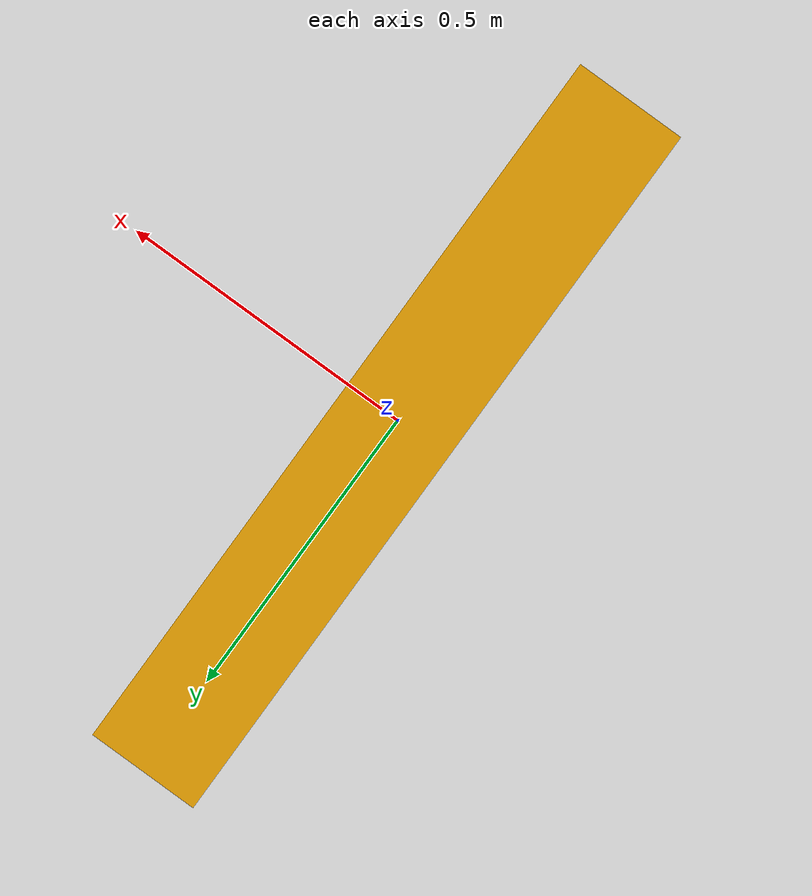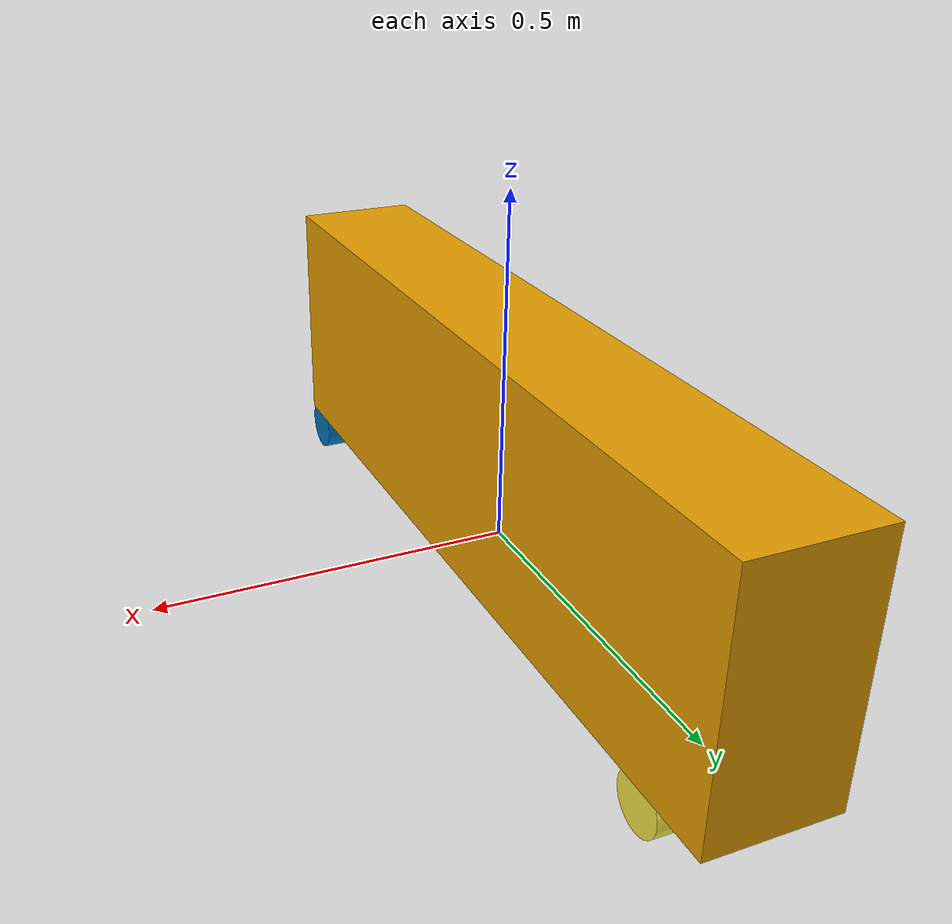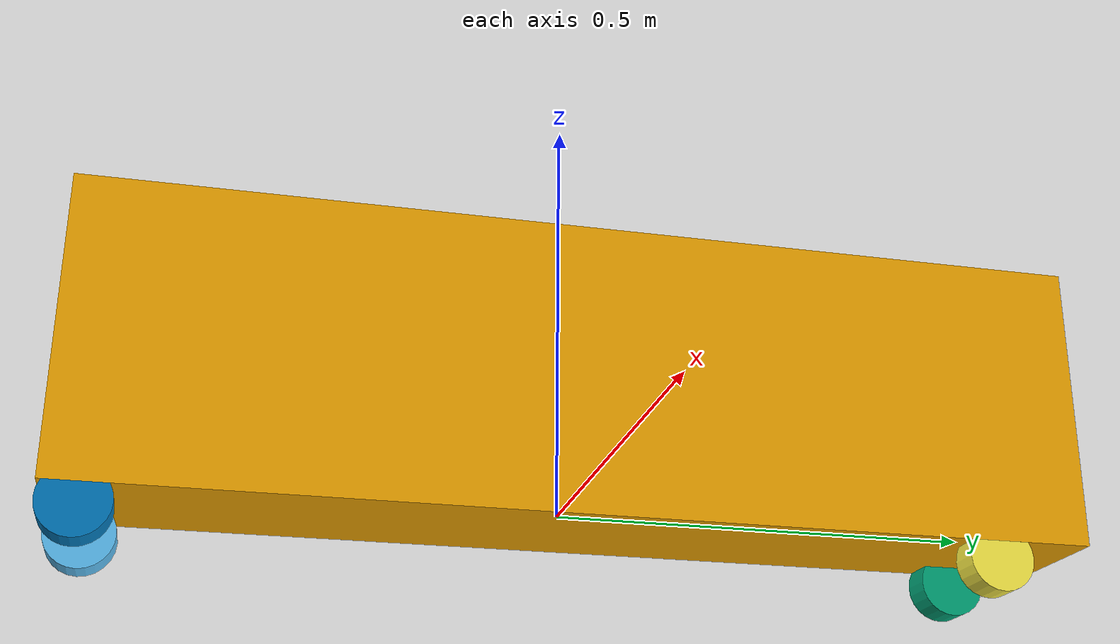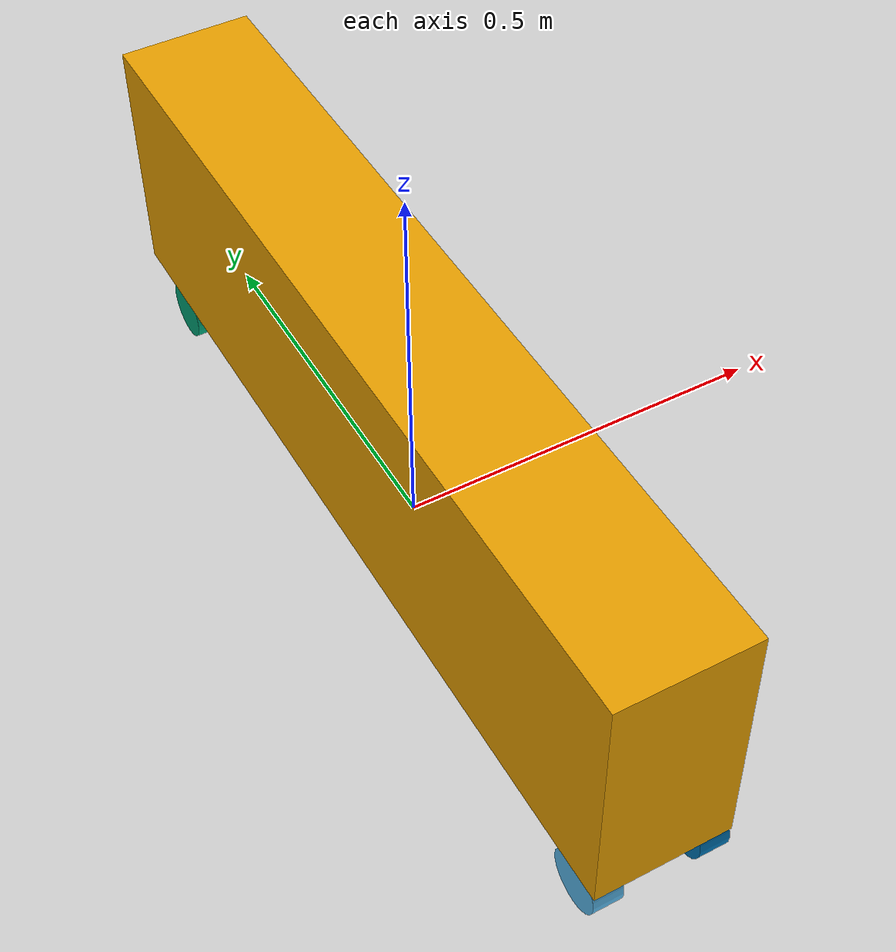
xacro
<?xml version="1.0" ?>
<robot name="LV" xmlns:xacro="http://www.ros.org/wiki/xacro">

  <xacro:include filename="$(find platooning_tracking_gazebo)/models/LV/model.gazebo" />

  <!-- front -->
  <joint name="front_left" type="continuous">
    <parent link="LV__link_0"/>
    <child link="LV__link_1_clone"/>
    <origin rpy="0      1.5707  0" xyz="-0.06999  0.51724 -0.039"/>
    <axis xyz="-1.00000000e+00   0.00000000e+00   9.00000000e-05"/>
    <dynamics damping="0.7"/>
    <limit effort="10" velocity="100"/>
  </joint>
  <joint name="front_right" type="continuous">
    <parent link="LV__link_0"/>
    <child link="LV__link_1_clone_0"/>
    <origin rpy="0      1.5707  0" xyz="0.06999  0.51441 -0.039"/>
    <axis xyz="-1.00000000e+00   0.00000000e+00   9.00000000e-05"/>
    <dynamics damping="0.7"/>
    <limit effort="10" velocity="100"/>
  </joint>

  <!-- rear -->
  <joint name="rear_left" type="continuous">
    <parent link="LV__link_0"/>
    <child link="LV__link_1"/>
    <origin rpy="0      1.5707  0" xyz="-0.06999 -0.53055 -0.039"/>
    <axis xyz="-1.00000000e+00   0.00000000e+00   9.00000000e-05"/>
    <dynamics damping="0.7"/>
    <limit effort="10" velocity="100"/>
  </joint>
  <joint name="rear_right" type="continuous">
    <parent link="LV__link_0"/>
    <child link="LV__link_1_clone_1"/>
    <origin rpy="0      1.5707  0" xyz="0.06999 -0.53055 -0.039"/>
    <axis xyz="-1.00000000e+00   0.00000000e+00   9.00000000e-05"/>
    <dynamics damping="0.7"/>
    <limit effort="10" velocity="100"/>
  </joint>

  <link name="LV__link_0">
    <inertial>
      <mass value="1"/>
      <origin rpy="0  0  0" xyz="0  0  0"/>
      <inertia ixx="0.166667" ixy="0" ixz="0" iyy="0.166667" iyz="0" izz="0.166667"/>
    </inertial>
    <collision name="LV__collision">
      <origin rpy="0  0  0" xyz="0       0.02944  0.156"/>
      <geometry>
        <box size="0.18 1.2 0.35"/>
      </geometry>
    </collision>
    <visual name="LV__visual">
      <origin rpy="0  0  0" xyz="0       0.02944  0.156"/>
      <geometry>
        <box size="0.18 1.2 0.35"/>
      </geometry>
    </visual>
  </link>
  <link name="LV__link_1">
    <inertial>
      <mass value="1"/>
      <origin rpy="0  0  0" xyz="0  0  0"/>
      <inertia ixx="0.145833" ixy="0" ixz="0" iyy="0.145833" iyz="0" izz="0.125"/>
    </inertial>
    <collision name="LV__collision">
      <origin rpy="0  0  0" xyz="0  0  0"/>
      <geometry>
        <cylinder length="0.04" radius="0.04"/>
      </geometry>
    </collision>
    <visual name="LV__visual">
      <origin rpy="0  0  0" xyz="0  0  0"/>
      <geometry>
        <cylinder length="0.04" radius="0.04"/>
      </geometry>
    </visual>
  </link>
  <link name="LV__link_1_clone">
    <inertial>
      <mass value="1"/>
      <origin rpy="0  0  0" xyz="0  0  0"/>
      <inertia ixx="0.145833" ixy="0" ixz="0" iyy="0.145833" iyz="0" izz="0.125"/>
    </inertial>
    <collision name="LV__collision">
      <origin rpy="0  0  0" xyz="0  0  0"/>
      <geometry>
        <cylinder length="0.04" radius="0.04"/>
      </geometry>
    </collision>
    <visual name="LV__visual">
      <origin rpy="0  0  0" xyz="0  0  0"/>
      <geometry>
        <cylinder length="0.04" radius="0.04"/>
      </geometry>
    </visual>
  </link>
  <link name="LV__link_1_clone_0">
    <inertial>
      <mass value="1"/>
      <origin rpy="0  0  0" xyz="0  0  0"/>
      <inertia ixx="0.145833" ixy="0" ixz="0" iyy="0.145833" iyz="0" izz="0.125"/>
    </inertial>
    <collision name="LV__collision">
      <origin rpy="0  0  0" xyz="0  0  0"/>
      <geometry>
        <cylinder length="0.04" radius="0.04"/>
      </geometry>
    </collision>
    <visual name="LV__visual">
      <origin rpy="0  0  0" xyz="0  0  0"/>
      <geometry>
        <cylinder length="0.04" radius="0.04"/>
      </geometry>
    </visual>
  </link>
  <link name="LV__link_1_clone_1">
    <inertial>
      <mass value="1"/>
      <origin rpy="0  0  0" xyz="0  0  0"/>
      <inertia ixx="0.145833" ixy="0" ixz="0" iyy="0.145833" iyz="0" izz="0.125"/>
    </inertial>
    <collision name="LV__collision">
      <origin rpy="0  0  0" xyz="0  0  0"/>
      <geometry>
        <cylinder length="0.04" radius="0.04"/>
      </geometry>
    </collision>
    <visual name="LV__visual">
      <origin rpy="0  0  0" xyz="0  0  0"/>
      <geometry>
        <cylinder length="0.04" radius="0.04"/>
      </geometry>
    </visual>
  </link>

  <transmission name="tran1">
    <type>transmission_interface/SimpleTransmission</type>
    <joint name="front_left">
      <hardwareInterface>hardware_interface/EffortJointInterface</hardwareInterface>
    </joint>
    <actuator name="motor1">
      <hardwareInterface>hardware_interface/EffortJointInterface</hardwareInterface>
      <mechanicalReduction>1</mechanicalReduction>
    </actuator>
  </transmission>

  <transmission name="tran2">
    <type>transmission_interface/SimpleTransmission</type>
    <joint name="front_right">
      <hardwareInterface>hardware_interface/EffortJointInterface</hardwareInterface>
    </joint>
    <actuator name="motor2">
      <hardwareInterface>hardware_interface/EffortJointInterface</hardwareInterface>
      <mechanicalReduction>1</mechanicalReduction>
    </actuator>
  </transmission>

</robot>
